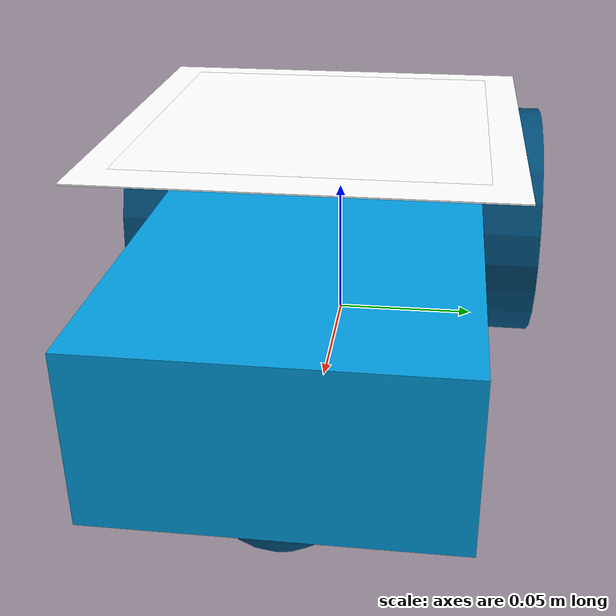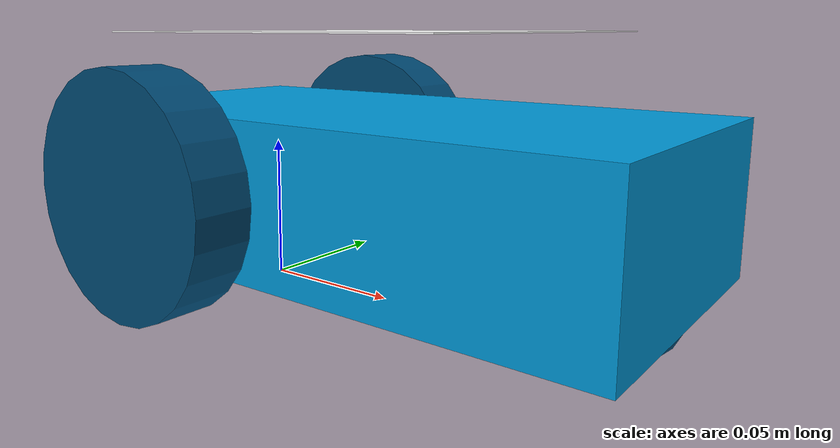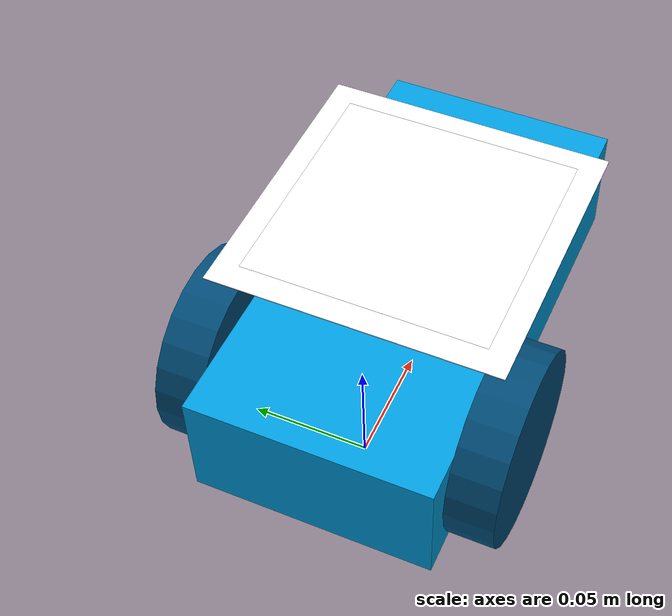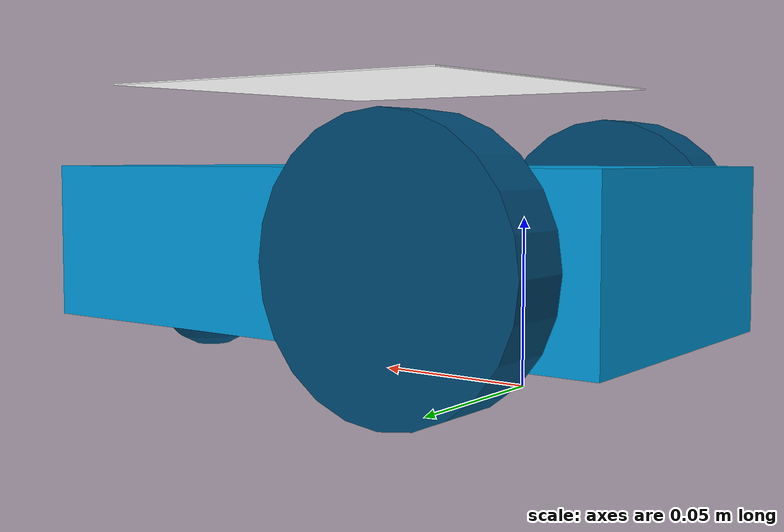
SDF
<?xml version="1.0" ?>
<sdf version="1.9">
  <model name="simple_robot" canonical_link='chassis'>
    <pose>0 0 0 0 0 0</pose>
		<link name='chassis'>
			<pose relative_to='__model__'>0.05 0 0.04 0 0 0</pose>
			  <inertial>
        <mass>1</mass>
        <inertia>
            <ixx>0.001191615</ixx>
            <ixy>0</ixy>
            <ixz>0</ixz>
            <iyy>0.004051490</iyy>
            <iyz>0</iyz>
            <izz>0.004766458</izz>
        </inertia>
    	</inertial>
			<visual name='visual'>
        <geometry>
            <box>
                <size>0.2 0.1 0.05</size>
            </box>
        </geometry>
        <material>
            <ambient>0.0 0.612 0.867 1</ambient>
            <diffuse>0.0 0.612 0.867 1</diffuse>
            <specular>0.0 0.612 0.867 1</specular>
        </material>
			</visual>
			<collision name='collision'>
            <geometry>
                <box>
                    <size>0.2 0.1 0.05</size>
                </box>
            </geometry>
        </collision>

		<sensor name="camera_sensor" type="camera">
		<pose>0.1 0 0.05 0 0 0</pose>
	    <camera>
	      <image>
	        <width>1920</width>
	        <height>1080</height>
	        <format>R8G8B8</format>
	      </image>
	      <clip>
	        <near>0.1</near>
	        <far>100</far>
	      </clip>
	      <horizontal_fov>1.047</horizontal_fov>
	    </camera>
	    <always_on>1</always_on>
	    <update_rate>30</update_rate>
	    <visualize>true</visualize>
		<topic>camera</topic>
	  </sensor>

	  <sensor name="lidar_3d" type="gpu_lidar">
	  <pose>0.1 0 0.08 0 0.0 0</pose>
	  <lidar>
	    <scan>
	      <horizontal>
	        <samples>360</samples>
	        <resolution>1</resolution>
	        <min_angle>-1.5708</min_angle>
	        <max_angle>1.5708</max_angle>
	      </horizontal>
	      <vertical>
	        <samples>180</samples>
	        <resolution>1</resolution>
	        <min_angle>-0.5236</min_angle>
	        <max_angle>0.5236</max_angle>
	      </vertical>
	    </scan>
	    <range>
	      <min>0.02</min>
	      <max>3.0</max>
	      <resolution>0.01</resolution>
	    </range>
	  </lidar>
	  <always_on>1</always_on>
	  <update_rate>10</update_rate>
	  <visualize>true</visualize>
	  <topic>lidar_3d</topic>
	</sensor>

	<visual name="marker_border">
		<pose relative_to='chassis'>0.0 0 0.05 0 0 0</pose>
      <geometry>
        <box>
          <size>0.12 0.12 0.0004</size>
        </box>
      </geometry>
      <material>
        <diffuse>1 1 1 1</diffuse> <!-- Weiß -->
      </material>
    </visual>
	<visual name='aruco_marker'>
		<pose relative_to='chassis'>0.0 0 0.051 0 0 0</pose>
	<geometry>
		<plane>
		<normal>0 0 1</normal>
		<size>0.1 0.1 0.001</size>
		</plane>
	</geometry>
	<material>
		<diffuse>1 1 1 1</diffuse>
		<pbr>
			<metal>
				<albedo_map>file://models/simple_robot/aruco_0.png</albedo_map>
				<metalness>0.0</metalness>
				<roughness>0.8</roughness>
			</metal>
		</pbr>
	</material>
	</visual>

    </link>

		<link name='left_wheel'>
			<pose relative_to="chassis">-0.05 0.06 0 -1.5707 0 0</pose>
			<inertial>
					<mass>0.2</mass>
					<inertia>
							<ixx>0.000800</ixx>
							<ixy>0</ixy>
							<ixz>0</ixz>
							<iyy>0.000433</iyy>
							<iyz>0</iyz>
							<izz>0.000433</izz>
					</inertia>
			</inertial>
			<visual name='visual'>
        <geometry>
            <cylinder>
                <radius>0.04</radius>
                <length>0.02</length>
            </cylinder>
        </geometry>
        <material>
            <ambient>0.0 0.29 0.46 1</ambient>
            <diffuse>0.0 0.29 0.46 1</diffuse>
            <specular>0.0 0.0 0.0 1</specular>
        </material>
			</visual>
			<collision name='collision'>
					<geometry>
							<cylinder>
									<radius>0.04</radius>
									<length>0.02</length>
							</cylinder>
					</geometry>
			</collision>
		</link>
		<link name='right_wheel'>
			<pose relative_to="chassis">-0.05 -0.06 0 -1.5707 0 0</pose>
			<inertial>
					<mass>0.2</mass>
					<inertia>
							<ixx>0.000800</ixx>
							<ixy>0</ixy>
							<ixz>0</ixz>
							<iyy>0.000433</iyy>
							<iyz>0</iyz>
							<izz>0.000433</izz>
					</inertia>
			</inertial>
			<visual name='visual'>
				<geometry>
						<cylinder>
								<radius>0.04</radius>
								<length>0.02</length>
						</cylinder>
				</geometry>
				<material>
						<ambient>0.0 0.29 0.46 1</ambient>
						<diffuse>0.0 0.29 0.46 1</diffuse>
						<specular>0.0 0.0 0.0 1</specular>
				</material>
				</visual>
				<collision name='collision'>
						<geometry>
								<cylinder>
										<radius>0.04</radius>
										<length>0.02</length>
								</cylinder>
						</geometry>
				</collision>
			</link>
			<frame name="caster_frame" attached_to='chassis'>
				<pose>0.08 0 -0.02 0 0 0</pose>
			</frame>
			<link name='caster'>
				<pose relative_to='caster_frame'/>
				<inertial>
						<mass>0.1</mass>
						<inertia>
								<ixx>0.00016</ixx>
								<ixy>0</ixy>
								<ixz>0</ixz>
								<iyy>0.00016</iyy>
								<iyz>0</iyz>
								<izz>0.00016</izz>
						</inertia>
				</inertial>
				<visual name='visual'>
						<geometry>
								<sphere>
										<radius>0.02</radius>
								</sphere>
						</geometry>
						<material>
								<ambient>0.0 0.29 0.46 1</ambient>
								<diffuse>0.0 0.29 0.46 1</diffuse>
								<specular>0.0 0.0 0.0 1</specular>
						</material>
				</visual>
				<collision name='collision'>
						<geometry>
								<sphere>
										<radius>0.02</radius>
								</sphere>
						</geometry>
				</collision>
		</link>
		<joint name='left_wheel_joint' type='revolute'>
			<pose relative_to='left_wheel'/>
			<parent>chassis</parent>
			<child>left_wheel</child>
			<axis>
					<xyz expressed_in='__model__'>0 1 0</xyz>
					<limit>
							<lower>-1.79769e+308</lower>    <!--negative infinity-->
							<upper> 1.79769e+308</upper>    <!--positive infinity-->
					</limit>
			</axis>
		</joint>
		<joint name='right_wheel_joint' type='revolute'>
			<pose relative_to='right_wheel'/>
			<parent>chassis</parent>
			<child>right_wheel</child>
			<axis>
					<xyz expressed_in='__model__'>0 1 0</xyz>
					<limit>
							<lower>-1.79769e+308</lower>    <!--negative infinity-->
							<upper> 1.79769e+308</upper>    <!--positive infinity-->
					</limit>
			</axis>
		</joint>
		<joint name='caster_wheel' type='ball'>
			<parent>chassis</parent>
			<child>caster</child>
		</joint>
		<plugin
			filename="libignition-gazebo-diff-drive-system.so"
			name="ignition::gazebo::systems::DiffDrive">
			<left_joint>left_wheel_joint</left_joint>
			<right_joint>right_wheel_joint</right_joint>
			<wheel_separation>0.12</wheel_separation>
			<wheel_radius>0.04</wheel_radius>
			<odom_publish_frequency>1</odom_publish_frequency>
			<publish_odom>true</publish_odom>
			<odom_topic>/odometry</odom_topic>
			<topic>cmd_vel</topic>
		</plugin>
		<plugin
    	  filename="ignition-gazebo-sensors-system"
    	  name="ignition::gazebo::systems::Sensors">
    	  <render_engine>ogre</render_engine>
    	</plugin>

	</model>
</sdf>
